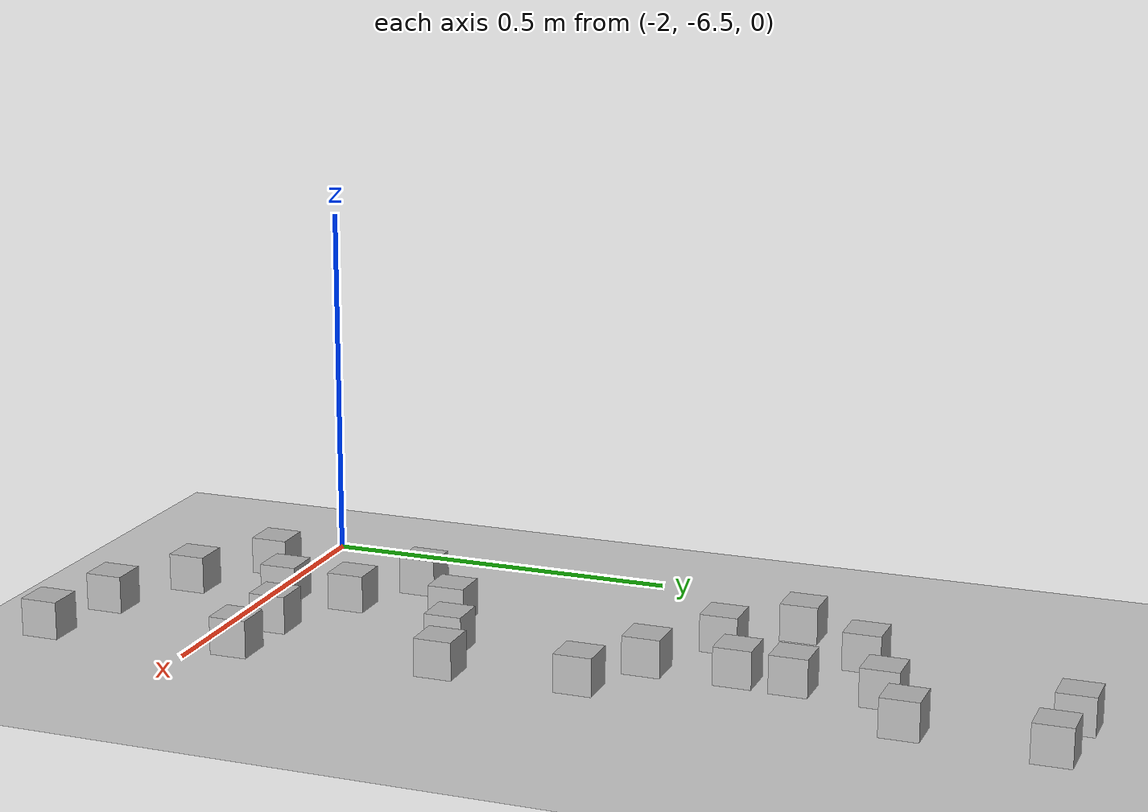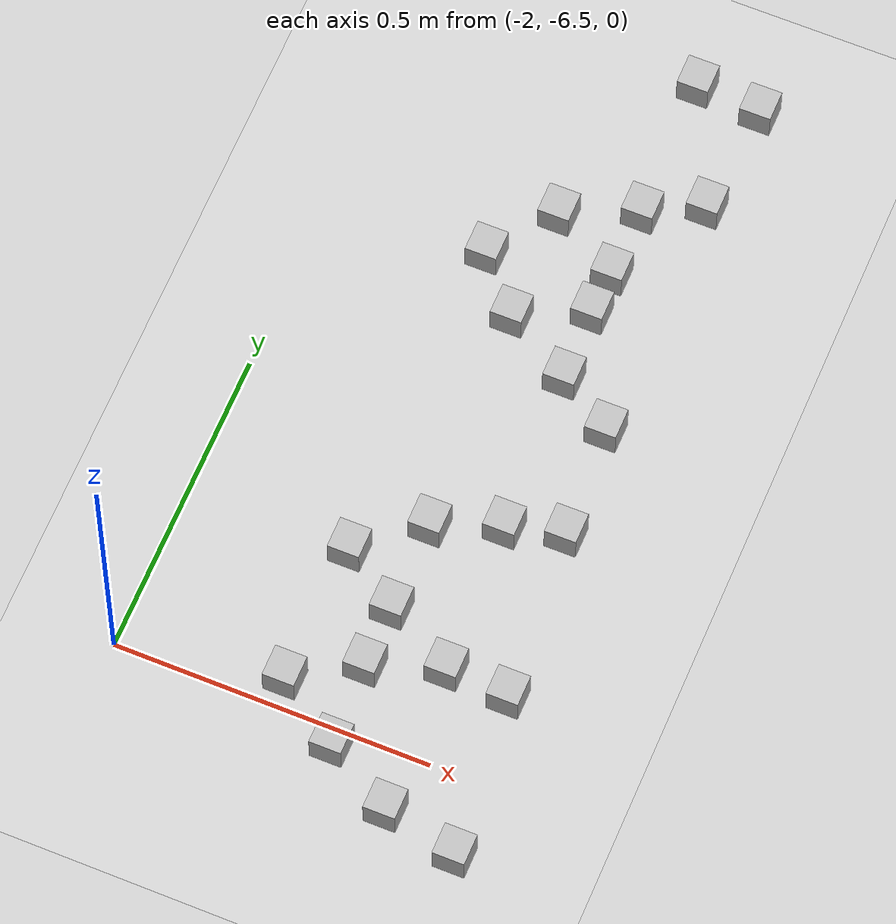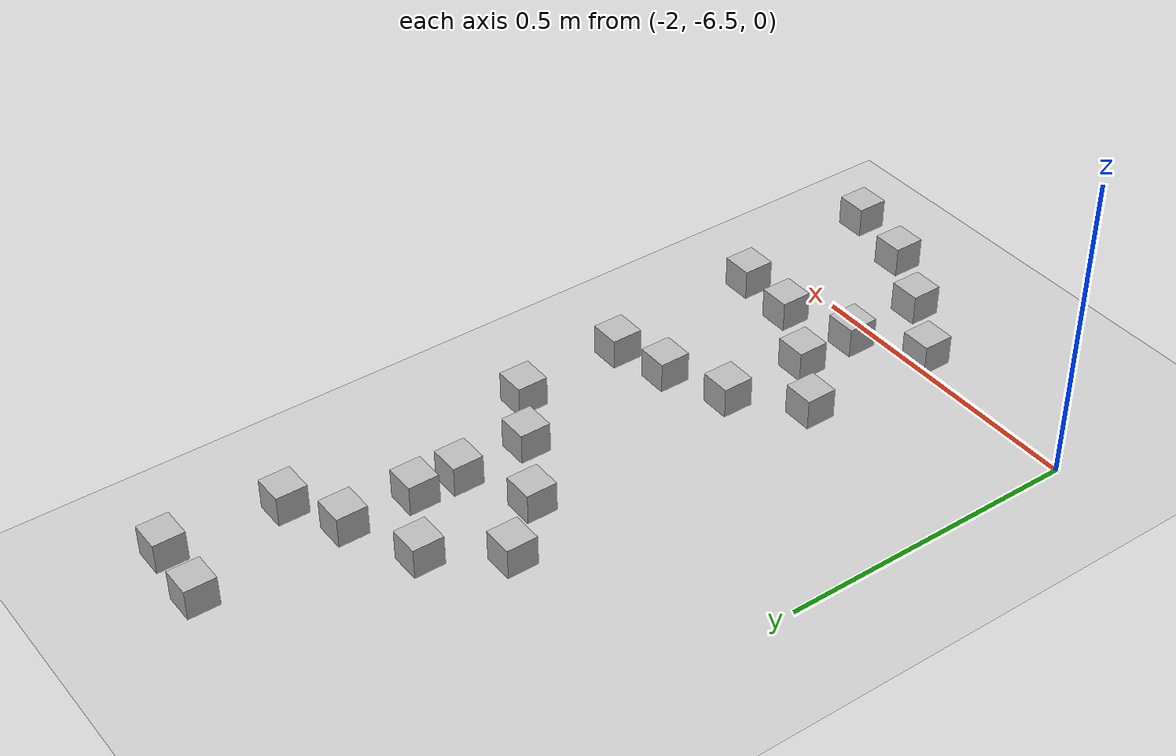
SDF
<sdf version="1.6">
 <world name="default">
  <model name="ground_plane">
   <static>1</static>
   <link name="link">
    <collision name="collision">
     <geometry><plane><normal>0 0 1</normal><size>100 100</size></plane></geometry>
     <surface><friction><ode><mu>100</mu><mu2>50</mu2></ode></friction></surface>
    </collision>
    <visual name="visual">
     <cast_shadows>0</cast_shadows>
     <geometry><plane><normal>0 0 1</normal><size>100 100</size></plane></geometry>
     <material>
      <script><uri>file://media/materials/scripts/gazebo.material</uri><name>Gazebo/Grey</name></script>
     </material>
    </visual>
   </link>
  </model>
  <model name="at0">
   <static>0</static>
   <link name="link">
    <inertial>
     <mass>0.01</mass>
     <inertia><ixx>4e-05</ixx><ixy>0</ixy><ixz>0</ixz><iyy>4e-05</iyy><iyz>0</iyz><izz>4e-05</izz></inertia>
    </inertial>
    <visual name="visual">
     <geometry><box><size>0.05 0.05 0.05</size></box></geometry>
     <material>
      <script>
       <uri>model://at0/materials/scripts</uri>
       <uri>model://at0/materials/textures</uri>
       <name>at0/Diffuse</name>
      </script>
     </material>
    </visual>
    <collision name="collision">
     <geometry><box><size>0.05 0.05 0.05</size></box></geometry>
     <surface><friction><ode><mu>0.8</mu><mu2>0.7</mu2></ode></friction></surface>
    </collision>
   </link>
   <pose>-1.73722 -6.47551 0.074995 -3.5e-05 9e-06 -1.7e-05</pose>
  </model>
  <model name="at0_clone">
   <static>0</static>
   <link name="link">
    <inertial>
     <mass>0.01</mass>
     <inertia><ixx>4e-05</ixx><ixy>0</ixy><ixz>0</ixz><iyy>4e-05</iyy><iyz>0</iyz><izz>4e-05</izz></inertia>
    </inertial>
    <visual name="visual">
     <geometry><box><size>0.05 0.05 0.05</size></box></geometry>
     <material>
      <script>
       <uri>model://at0/materials/scripts</uri>
       <uri>model://at0/materials/textures</uri>
       <name>at0/Diffuse</name>
      </script>
     </material>
    </visual>
    <collision name="collision">
     <geometry><box><size>0.05 0.05 0.05</size></box></geometry>
     <surface><friction><ode><mu>0.8</mu><mu2>0.7</mu2></ode></friction></surface>
    </collision>
   </link>
   <pose>-1.63322 -6.54725 0.074996 3.5e-05 -9e-06 -1.8e-05</pose>
  </model>
  <model name="at0_clone_clone">
   <static>0</static>
   <link name="link">
    <inertial>
     <mass>0.01</mass>
     <inertia><ixx>4e-05</ixx><ixy>0</ixy><ixz>0</ixz><iyy>4e-05</iyy><iyz>0</iyz><izz>4e-05</izz></inertia>
    </inertial>
    <visual name="visual">
     <geometry><box><size>0.05 0.05 0.05</size></box></geometry>
     <material>
      <script>
       <uri>model://at0/materials/scripts</uri>
       <uri>model://at0/materials/textures</uri>
       <name>at0/Diffuse</name>
      </script>
     </material>
    </visual>
    <collision name="collision">
     <geometry><box><size>0.05 0.05 0.05</size></box></geometry>
     <surface><friction><ode><mu>0.8</mu><mu2>0.7</mu2></ode></friction></surface>
    </collision>
   </link>
   <pose>-1.52223 -6.61112 0.074995 -3.6e-05 -1.3e-05 -2.2e-05</pose>
  </model>
  <model name="at0_clone_clone_0">
   <static>0</static>
   <link name="link">
    <inertial>
     <mass>0.01</mass>
     <inertia><ixx>4e-05</ixx><ixy>0</ixy><ixz>0</ixz><iyy>4e-05</iyy><iyz>0</iyz><izz>4e-05</izz></inertia>
    </inertial>
    <visual name="visual">
     <geometry><box><size>0.05 0.05 0.05</size></box></geometry>
     <material>
      <script>
       <uri>model://at0/materials/scripts</uri>
       <uri>model://at0/materials/textures</uri>
       <name>at0/Diffuse</name>
      </script>
     </material>
    </visual>
    <collision name="collision">
     <geometry><box><size>0.05 0.05 0.05</size></box></geometry>
     <surface><friction><ode><mu>0.8</mu><mu2>0.7</mu2></ode></friction></surface>
    </collision>
   </link>
   <pose>-1.63786 -6.41293 0.074995 3.6e-05 1.3e-05 -2.2e-05</pose>
  </model>
  <model name="at0_clone_clone_1">
   <static>0</static>
   <link name="link">
    <inertial>
     <mass>0.01</mass>
     <inertia><ixx>4e-05</ixx><ixy>0</ixy><ixz>0</ixz><iyy>4e-05</iyy><iyz>0</iyz><izz>4e-05</izz></inertia>
    </inertial>
    <visual name="visual">
     <geometry><box><size>0.05 0.05 0.05</size></box></geometry>
     <material>
      <script>
       <uri>model://at0/materials/scripts</uri>
       <uri>model://at0/materials/textures</uri>
       <name>at0/Diffuse</name>
      </script>
     </material>
    </visual>
    <collision name="collision">
     <geometry><box><size>0.05 0.05 0.05</size></box></geometry>
     <surface><friction><ode><mu>0.8</mu><mu2>0.7</mu2></ode></friction></surface>
    </collision>
   </link>
   <pose>-1.52699 -6.37388 0.074995 -3.6e-05 -1.3e-05 -2.1e-05</pose>
  </model>
  <model name="at0_clone_clone_2">
   <static>0</static>
   <link name="link">
    <inertial>
     <mass>0.01</mass>
     <inertia><ixx>4e-05</ixx><ixy>0</ixy><ixz>0</ixz><iyy>4e-05</iyy><iyz>0</iyz><izz>4e-05</izz></inertia>
    </inertial>
    <visual name="visual">
     <geometry><box><size>0.05 0.05 0.05</size></box></geometry>
     <material>
      <script>
       <uri>model://at0/materials/scripts</uri>
       <uri>model://at0/materials/textures</uri>
       <name>at0/Diffuse</name>
      </script>
     </material>
    </visual>
    <collision name="collision">
     <geometry><box><size>0.05 0.05 0.05</size></box></geometry>
     <surface><friction><ode><mu>0.8</mu><mu2>0.7</mu2></ode></friction></surface>
    </collision>
   </link>
   <pose>-1.63786 -6.31398 0.074995 3.6e-05 1.3e-05 -2.1e-05</pose>
  </model>
  <model name="at0_clone_clone_3">
   <static>0</static>
   <link name="link">
    <inertial>
     <mass>0.01</mass>
     <inertia><ixx>4e-05</ixx><ixy>0</ixy><ixz>0</ixz><iyy>4e-05</iyy><iyz>0</iyz><izz>4e-05</izz></inertia>
    </inertial>
    <visual name="visual">
     <geometry><box><size>0.05 0.05 0.05</size></box></geometry>
     <material>
      <script>
       <uri>model://at0/materials/scripts</uri>
       <uri>model://at0/materials/textures</uri>
       <name>at0/Diffuse</name>
      </script>
     </material>
    </visual>
    <collision name="collision">
     <geometry><box><size>0.05 0.05 0.05</size></box></geometry>
     <surface><friction><ode><mu>0.8</mu><mu2>0.7</mu2></ode></friction></surface>
    </collision>
   </link>
   <pose>-1.73077 -6.25101 0.074995 -3.6e-05 -1.3e-05 -2.1e-05</pose>
  </model>
  <model name="at0_clone_clone_4">
   <static>0</static>
   <link name="link">
    <inertial>
     <mass>0.01</mass>
     <inertia><ixx>4e-05</ixx><ixy>0</ixy><ixz>0</ixz><iyy>4e-05</iyy><iyz>0</iyz><izz>4e-05</izz></inertia>
    </inertial>
    <visual name="visual">
     <geometry><box><size>0.05 0.05 0.05</size></box></geometry>
     <material>
      <script>
       <uri>model://at0/materials/scripts</uri>
       <uri>model://at0/materials/textures</uri>
       <name>at0/Diffuse</name>
      </script>
     </material>
    </visual>
    <collision name="collision">
     <geometry><box><size>0.05 0.05 0.05</size></box></geometry>
     <surface><friction><ode><mu>0.8</mu><mu2>0.7</mu2></ode></friction></surface>
    </collision>
   </link>
   <pose>-1.63786 -6.17012 0.074995 3.6e-05 1.3e-05 -2e-05</pose>
  </model>
  <model name="at0_clone_clone_5">
   <static>0</static>
   <link name="link">
    <inertial>
     <mass>0.01</mass>
     <inertia><ixx>4e-05</ixx><ixy>0</ixy><ixz>0</ixz><iyy>4e-05</iyy><iyz>0</iyz><izz>4e-05</izz></inertia>
    </inertial>
    <visual name="visual">
     <geometry><box><size>0.05 0.05 0.05</size></box></geometry>
     <material>
      <script>
       <uri>model://at0/materials/scripts</uri>
       <uri>model://at0/materials/textures</uri>
       <name>at0/Diffuse</name>
      </script>
     </material>
    </visual>
    <collision name="collision">
     <geometry><box><size>0.05 0.05 0.05</size></box></geometry>
     <surface><friction><ode><mu>0.8</mu><mu2>0.7</mu2></ode></friction></surface>
    </collision>
   </link>
   <pose>-1.53591 -6.13116 0.074995 -3.6e-05 -1.3e-05 -2e-05</pose>
  </model>
  <model name="at0_clone_clone_6">
   <static>0</static>
   <link name="link">
    <inertial>
     <mass>0.01</mass>
     <inertia><ixx>4e-05</ixx><ixy>0</ixy><ixz>0</ixz><iyy>4e-05</iyy><iyz>0</iyz><izz>4e-05</izz></inertia>
    </inertial>
    <visual name="visual">
     <geometry><box><size>0.05 0.05 0.05</size></box></geometry>
     <material>
      <script>
       <uri>model://at0/materials/scripts</uri>
       <uri>model://at0/materials/textures</uri>
       <name>at0/Diffuse</name>
      </script>
     </material>
    </visual>
    <collision name="collision">
     <geometry><box><size>0.05 0.05 0.05</size></box></geometry>
     <surface><friction><ode><mu>0.8</mu><mu2>0.7</mu2></ode></friction></surface>
    </collision>
   </link>
   <pose>-1.73369 -5.72059 0.074995 3.6e-05 1.3e-05 -1.9e-05</pose>
  </model>
  <model name="at0_clone_clone_7">
   <static>0</static>
   <link name="link">
    <inertial>
     <mass>0.01</mass>
     <inertia><ixx>4e-05</ixx><ixy>0</ixy><ixz>0</ixz><iyy>4e-05</iyy><iyz>0</iyz><izz>4e-05</izz></inertia>
    </inertial>
    <visual name="visual">
     <geometry><box><size>0.05 0.05 0.05</size></box></geometry>
     <material>
      <script>
       <uri>model://at0/materials/scripts</uri>
       <uri>model://at0/materials/textures</uri>
       <name>at0/Diffuse</name>
      </script>
     </material>
    </visual>
    <collision name="collision">
     <geometry><box><size>0.05 0.05 0.05</size></box></geometry>
     <surface><friction><ode><mu>0.8</mu><mu2>0.7</mu2></ode></friction></surface>
    </collision>
   </link>
   <pose>-1.65875 -5.80452 0.074995 -3.6e-05 -1.3e-05 -1.9e-05</pose>
  </model>
  <model name="at0_clone_clone_8">
   <static>0</static>
   <link name="link">
    <inertial>
     <mass>0.01</mass>
     <inertia><ixx>4e-05</ixx><ixy>0</ixy><ixz>0</ixz><iyy>4e-05</iyy><iyz>0</iyz><izz>4e-05</izz></inertia>
    </inertial>
    <visual name="visual">
     <geometry><box><size>0.05 0.05 0.05</size></box></geometry>
     <material>
      <script>
       <uri>model://at0/materials/scripts</uri>
       <uri>model://at0/materials/textures</uri>
       <name>at0/Diffuse</name>
      </script>
     </material>
    </visual>
    <collision name="collision">
     <geometry><box><size>0.05 0.05 0.05</size></box></geometry>
     <surface><friction><ode><mu>0.8</mu><mu2>0.7</mu2></ode></friction></surface>
    </collision>
   </link>
   <pose>-1.54783 -5.8704 0.074995 3.6e-05 1.3e-05 -1.9e-05</pose>
  </model>
  <model name="at0_clone_clone_9">
   <static>0</static>
   <link name="link">
    <inertial>
     <mass>0.01</mass>
     <inertia><ixx>4e-05</ixx><ixy>0</ixy><ixz>0</ixz><iyy>4e-05</iyy><iyz>0</iyz><izz>4e-05</izz></inertia>
    </inertial>
    <visual name="visual">
     <geometry><box><size>0.05 0.05 0.05</size></box></geometry>
     <material>
      <script>
       <uri>model://at0/materials/scripts</uri>
       <uri>model://at0/materials/textures</uri>
       <name>at0/Diffuse</name>
      </script>
     </material>
    </visual>
    <collision name="collision">
     <geometry><box><size>0.05 0.05 0.05</size></box></geometry>
     <surface><friction><ode><mu>0.8</mu><mu2>0.7</mu2></ode></friction></surface>
    </collision>
   </link>
   <pose>-1.65871 -5.61868 0.074995 -3.6e-05 -1.3e-05 -1.8e-05</pose>
  </model>
  <model name="at0_clone_clone_10">
   <static>0</static>
   <link name="link">
    <inertial>
     <mass>0.01</mass>
     <inertia><ixx>4e-05</ixx><ixy>0</ixy><ixz>0</ixz><iyy>4e-05</iyy><iyz>0</iyz><izz>4e-05</izz></inertia>
    </inertial>
    <visual name="visual">
     <geometry><box><size>0.05 0.05 0.05</size></box></geometry>
     <material>
      <script>
       <uri>model://at0/materials/scripts</uri>
       <uri>model://at0/materials/textures</uri>
       <name>at0/Diffuse</name>
      </script>
     </material>
    </visual>
    <collision name="collision">
     <geometry><box><size>0.05 0.05 0.05</size></box></geometry>
     <surface><friction><ode><mu>0.8</mu><mu2>0.7</mu2></ode></friction></surface>
    </collision>
   </link>
   <pose>-1.54483 -5.56773 0.074995 3.6e-05 1.3e-05 -1.8e-05</pose>
  </model>
  <model name="at0_clone_clone_11">
   <static>0</static>
   <link name="link">
    <inertial>
     <mass>0.01</mass>
     <inertia><ixx>4e-05</ixx><ixy>0</ixy><ixz>0</ixz><iyy>4e-05</iyy><iyz>0</iyz><izz>4e-05</izz></inertia>
    </inertial>
    <visual name="visual">
     <geometry><box><size>0.05 0.05 0.05</size></box></geometry>
     <material>
      <script>
       <uri>model://at0/materials/scripts</uri>
       <uri>model://at0/materials/textures</uri>
       <name>at0/Diffuse</name>
      </script>
     </material>
    </visual>
    <collision name="collision">
     <geometry><box><size>0.05 0.05 0.05</size></box></geometry>
     <surface><friction><ode><mu>0.8</mu><mu2>0.7</mu2></ode></friction></surface>
    </collision>
   </link>
   <pose>-1.55075 -5.75355 0.074996 3.5e-05 -9e-06 -1.7e-05</pose>
  </model>
  <model name="at0_clone_clone_12">
   <static>0</static>
   <link name="link">
    <inertial>
     <mass>0.01</mass>
     <inertia><ixx>4e-05</ixx><ixy>0</ixy><ixz>0</ixz><iyy>4e-05</iyy><iyz>0</iyz><izz>4e-05</izz></inertia>
    </inertial>
    <visual name="visual">
     <geometry><box><size>0.05 0.05 0.05</size></box></geometry>
     <material>
      <script>
       <uri>model://at0/materials/scripts</uri>
       <uri>model://at0/materials/textures</uri>
       <name>at0/Diffuse</name>
      </script>
     </material>
    </visual>
    <collision name="collision">
     <geometry><box><size>0.05 0.05 0.05</size></box></geometry>
     <surface><friction><ode><mu>0.8</mu><mu2>0.7</mu2></ode></friction></surface>
    </collision>
   </link>
   <pose>-1.54799 -5.68163 0.074995 -3.5e-05 9e-06 -1.7e-05</pose>
  </model>
  <model name="at0_clone_clone_15">
   <static>0</static>
   <link name="link">
    <inertial>
     <mass>0.01</mass>
     <inertia><ixx>4e-05</ixx><ixy>0</ixy><ixz>0</ixz><iyy>4e-05</iyy><iyz>0</iyz><izz>4e-05</izz></inertia>
    </inertial>
    <visual name="visual">
     <geometry><box><size>0.05 0.05 0.05</size></box></geometry>
     <material>
      <script>
       <uri>model://at0/materials/scripts</uri>
       <uri>model://at0/materials/textures</uri>
       <name>at0/Diffuse</name>
      </script>
     </material>
    </visual>
    <collision name="collision">
     <geometry><box><size>0.05 0.05 0.05</size></box></geometry>
     <surface><friction><ode><mu>0.8</mu><mu2>0.7</mu2></ode></friction></surface>
    </collision>
   </link>
   <pose>-1.54782 -5.33398 0.074995 3.6e-05 1.3e-05 -1.6e-05</pose>
  </model>
  <model name="at0_clone_clone_clone">
   <static>0</static>
   <link name="link">
    <inertial>
     <mass>0.01</mass>
     <inertia><ixx>4e-05</ixx><ixy>0</ixy><ixz>0</ixz><iyy>4e-05</iyy><iyz>0</iyz><izz>4e-05</izz></inertia>
    </inertial>
    <visual name="visual">
     <geometry><box><size>0.05 0.05 0.05</size></box></geometry>
     <material>
      <script>
       <uri>model://at0/materials/scripts</uri>
       <uri>model://at0/materials/textures</uri>
       <name>at0/Diffuse</name>
      </script>
     </material>
    </visual>
    <collision name="collision">
     <geometry><box><size>0.05 0.05 0.05</size></box></geometry>
     <surface><friction><ode><mu>0.8</mu><mu2>0.7</mu2></ode></friction></surface>
    </collision>
   </link>
   <pose>-1.40396 -6.63831 0.074995 3.6e-05 1.3e-05 -2.2e-05</pose>
  </model>
  <model name="at0_clone_clone_clone_0">
   <static>0</static>
   <link name="link">
    <inertial>
     <mass>0.01</mass>
     <inertia><ixx>4e-05</ixx><ixy>0</ixy><ixz>0</ixz><iyy>4e-05</iyy><iyz>0</iyz><izz>4e-05</izz></inertia>
    </inertial>
    <visual name="visual">
     <geometry><box><size>0.05 0.05 0.05</size></box></geometry>
     <material>
      <script>
       <uri>model://at0/materials/scripts</uri>
       <uri>model://at0/materials/textures</uri>
       <name>at0/Diffuse</name>
      </script>
     </material>
    </visual>
    <collision name="collision">
     <geometry><box><size>0.05 0.05 0.05</size></box></geometry>
     <surface><friction><ode><mu>0.8</mu><mu2>0.7</mu2></ode></friction></surface>
    </collision>
   </link>
   <pose>-1.42776 -6.37978 0.074995 -3.6e-05 -1.3e-05 -2.2e-05</pose>
  </model>
  <model name="at0_clone_clone_clone_1">
   <static>0</static>
   <link name="link">
    <inertial>
     <mass>0.01</mass>
     <inertia><ixx>4e-05</ixx><ixy>0</ixy><ixz>0</ixz><iyy>4e-05</iyy><iyz>0</iyz><izz>4e-05</izz></inertia>
    </inertial>
    <visual name="visual">
     <geometry><box><size>0.05 0.05 0.05</size></box></geometry>
     <material>
      <script>
       <uri>model://at0/materials/scripts</uri>
       <uri>model://at0/materials/textures</uri>
       <name>at0/Diffuse</name>
      </script>
     </material>
    </visual>
    <collision name="collision">
     <geometry><box><size>0.05 0.05 0.05</size></box></geometry>
     <surface><friction><ode><mu>0.8</mu><mu2>0.7</mu2></ode></friction></surface>
    </collision>
   </link>
   <pose>-1.44817 -6.10766 0.074995 3.6e-05 1.3e-05 -2.1e-05</pose>
  </model>
  <model name="at0_clone_clone_clone_2">
   <static>0</static>
   <link name="link">
    <inertial>
     <mass>0.01</mass>
     <inertia><ixx>4e-05</ixx><ixy>0</ixy><ixz>0</ixz><iyy>4e-05</iyy><iyz>0</iyz><izz>4e-05</izz></inertia>
    </inertial>
    <visual name="visual">
     <geometry><box><size>0.05 0.05 0.05</size></box></geometry>
     <material>
      <script>
       <uri>model://at0/materials/scripts</uri>
       <uri>model://at0/materials/textures</uri>
       <name>at0/Diffuse</name>
      </script>
     </material>
    </visual>
    <collision name="collision">
     <geometry><box><size>0.05 0.05 0.05</size></box></geometry>
     <surface><friction><ode><mu>0.8</mu><mu2>0.7</mu2></ode></friction></surface>
    </collision>
   </link>
   <pose>-1.45837 -5.92739 0.074995 3.6e-05 1.3e-05 -2.1e-05</pose>
  </model>
  <model name="at0_clone_clone_clone_3">
   <static>0</static>
   <link name="link">
    <inertial>
     <mass>0.01</mass>
     <inertia><ixx>4e-05</ixx><ixy>0</ixy><ixz>0</ixz><iyy>4e-05</iyy><iyz>0</iyz><izz>4e-05</izz></inertia>
    </inertial>
    <visual name="visual">
     <geometry><box><size>0.05 0.05 0.05</size></box></geometry>
     <material>
      <script>
       <uri>model://at0/materials/scripts</uri>
       <uri>model://at0/materials/textures</uri>
       <name>at0/Diffuse</name>
      </script>
     </material>
    </visual>
    <collision name="collision">
     <geometry><box><size>0.05 0.05 0.05</size></box></geometry>
     <surface><friction><ode><mu>0.8</mu><mu2>0.7</mu2></ode></friction></surface>
    </collision>
   </link>
   <pose>-1.45836 -5.52259 0.074995 3.6e-05 1.3e-05 -2.1e-05</pose>
  </model>
  <model name="at0_clone_clone_11_clone">
   <static>0</static>
   <link name="link">
    <inertial>
     <mass>0.01</mass>
     <inertia><ixx>4e-05</ixx><ixy>0</ixy><ixz>0</ixz><iyy>4e-05</iyy><iyz>0</iyz><izz>4e-05</izz></inertia>
    </inertial>
    <visual name="visual">
     <geometry><box><size>0.05 0.05 0.05</size></box></geometry>
     <material>
      <script>
       <uri>model://at0/materials/scripts</uri>
       <uri>model://at0/materials/textures</uri>
       <name>at0/Diffuse</name>
      </script>
     </material>
    </visual>
    <collision name="collision">
     <geometry><box><size>0.05 0.05 0.05</size></box></geometry>
     <surface><friction><ode><mu>0.8</mu><mu2>0.7</mu2></ode></friction></surface>
    </collision>
   </link>
   <pose>-1.44392 -5.34154 0.074995 -3.6e-05 -1.3e-05 -1.8e-05</pose>
  </model>
 </world>
</sdf>
